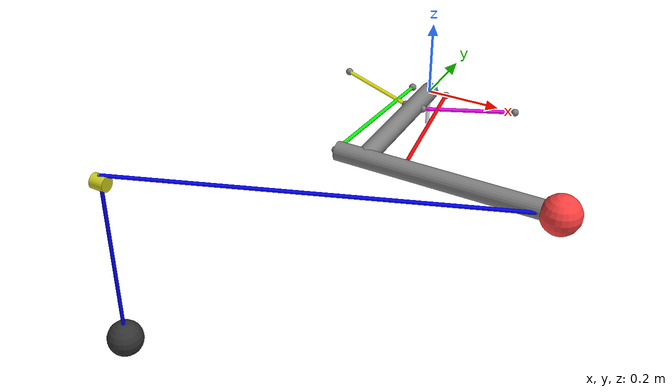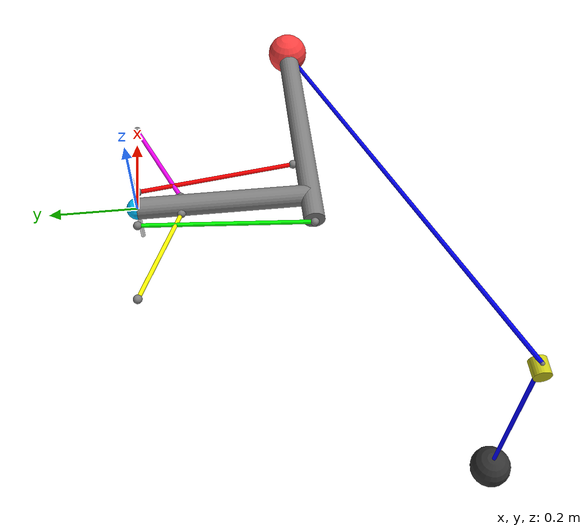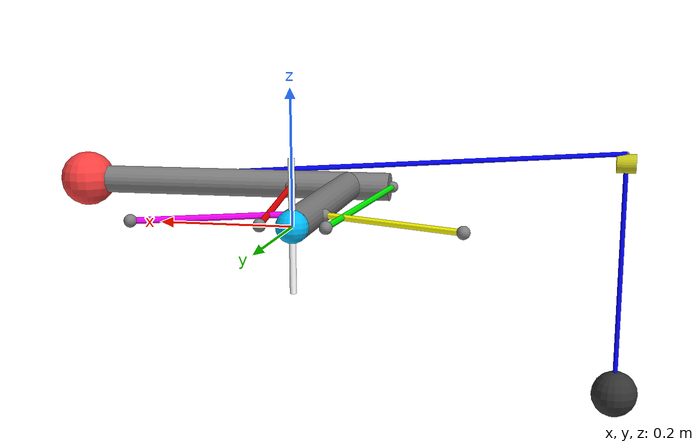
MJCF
<mujoco model="two-joint-limb">
  <option timestep="0.002"/>

  <visual>
    <map force="0.1" zfar="30" />
    <rgba haze="0.15 0.25 0.35 1" />
    <global offwidth="2560" offheight="1440" elevation="-45" azimuth="120" />
  </visual>

  <asset>
    <texture type="skybox" builtin="gradient" rgb1=".3 .5 .7" rgb2="0 0 0" width="32" height="512" />
    <texture name="grid" type="2d" builtin="checker" width="512" height="512" rgb1=".1 .2 .3"
      rgb2=".2 .3 .4" />
    <material name="grid" texture="grid" texrepeat="10 10" texuniform="true" reflectance=".2" />
  </asset>

  <default>
    <joint damping="0.1" />
    <muscle ctrllimited="true" ctrlrange="0 1" />
  </default>

  <worldbody>
    <!-- LIGHTS -->
    <light name="spotlight" mode="targetbodycom" target="hand" diffuse=".5 .5 .5"
      specular="0.3 0.3 0.3" pos="0 -6 4" cutoff="30" />
    <light name="top" pos="0 0 2" mode="trackcom" />

    <!-- FLOOR-->

    <!-- TRUNK -->
    <body name="trunk" pos="0 0 0">

      <!-- tendon attachment sites -->
      <site name="deltoid1" pos=".25 0 0" size="0.01" />
      <site name="latissimus1" pos="-0.25 0 0" size="0.01" />

      <!-- UPPER ARM -->
      <body name="upper_arm" pos="0 0 0">

        <!-- shoulder -->
        <joint name="shoulder" type="hinge" axis="0 0 1" range="-60 60" />

        <!-- tendon attachment sites -->
        <site name="deltoid2" pos="0.025 -.1 0" size="0.01" />
        <site name="latissimus2" pos="-0.025 -.1 0" size="0.01" />
        <site name="biceps1" pos="0.05 0 0" size="0.01" />
        <site name="triceps1" pos="-0.05 0 0" size="0.01" />

        <!-- humerus -->
        <geom name="humerus" type="cylinder" size="0.025" fromto="0 0 0 0 -.4 0" />

        <!-- LOWER ARM -->
        <body name="lower_arm" pos="0 -0.4 0">

          <!-- elbow -->
          <joint name="elbow" type="hinge" axis="0 0 1" range="-60 60" />

          <!-- tendon attachment sites -->
          <site name="biceps2" pos=".1 .03 0" size="0.01" />
          <site name="triceps2" pos="-.08 0 0" size="0.01" />

          <!-- radius -->
          <geom name="radius" type="cylinder" size="0.025" fromto="-.075 0 0 .5 0 0" />

          <!-- HAND -->
          <body name="hand" pos="0.5 0 0">
            <geom name="hand" type="sphere" size="0.05" pos="0 0 0" rgba="1 .25 .25 1" />
            <site name="nail2" pos="0 0 0" />
	    <site name="weight_connection_1" pos="0 0 0" />
          </body>
        </body>
      </body>
    </body>

    <!-- Pulley base -->
    <body name="pulley_base" pos="-0.5 -0.8 0">
    <geom name="pulley" type="cylinder" fromto="-0.02 0 0 0.02 0 0" size="0.02" rgba="0.8 0.8 0.1 1" />
    <site name="wrap_site" pos="0 0 0.02" size="0.005" />
    </body>

    <!-- Hanging weight -->
    <body name="hanging_weight" pos="-0.5 -0.8 -0.5">
    <joint name="weight_slide" type="slide" axis="0 0 1"/>
    <site name="hanging_weight_site" pos="0 0 0" size="0.01" />
    <geom name="weight_geom" type="sphere" size="0.05" mass="2" rgba="0.2 0.2 0.2 1"/>
    </body>

    <!-- TARGET -->
    <body name="target" mocap="true" pos="0 0 0">
      <geom name="target" size=".025" type="sphere" contype="0" conaffinity="0"
        rgba="0 .75 1 1" />
    </body>

    <!-- NAIL -->
    <body name="nail" mocap="true" pos="0 0 0">
      <geom name="nail" type="cylinder" size=".005" fromto="0 0 -.1 0 0 .1" contype="0"
        conaffinity="0" rgba="1 1 1 1" />
      <site name="nail1" pos="0 0 0" />
    </body>
  </worldbody>

  <equality>
    <connect name="nail_eq" active="false" site1="nail1" site2="nail2" />
  </equality>

  <tendon>
    <spatial name="deltoid_tendon" limited="true" range="0 1" width="0.005" rgba="1 0 1 1">
      <site site="deltoid1" />
      <site site="deltoid2" />
    </spatial>

    <spatial name="latissimus_tendon" limited="true" range="0 1" width="0.005" rgba="1 1 0 1">
      <site site="latissimus1" />
      <site site="latissimus2" />
    </spatial>

    <spatial name="biceps_tendon" limited="true" range="0 .485" width="0.005" rgba="1 0 0 1">
      <site site="biceps1" />
      <geom geom="humerus" />
      <site site="biceps2" />
    </spatial>

    <spatial name="triceps_tendon" limited="true" range="0 .5" width="0.005" rgba="0 1 0 1">
      <site site="triceps1" />
      <geom geom="radius" />
      <site site="triceps2" />
    </spatial>

    <spatial name="tendon_segment1" width="0.005" limited="true" range="0 0.5" rgba="0 0 1 1">
  <site site="weight_connection_1"/>
  <site site="wrap_site"/>
</spatial>

<spatial name="tendon_segment2" width="0.005" limited="true" range="0 0.5" rgba="0 0 1 1">
  <site site="wrap_site"/>
  <site site="hanging_weight_site"/>
</spatial>

  </tendon>

  <equality>
    <tendon name="pulley_constraint" tendon1="tendon_segment1" tendon2="tendon_segment2" polycoef="1 1" />
  </equality>

  <actuator>
    <muscle name="deltoid" tendon="deltoid_tendon" ctrlrange="0 1" force="100" timeconst=".01 .04" />
    <muscle name="latissimus" tendon="latissimus_tendon" ctrlrange="0 1" force="100"
      timeconst=".01 .04" />
    <muscle name="biceps" tendon="biceps_tendon" ctrlrange="0 1" force="100" timeconst=".01 .04" />
    <muscle name="triceps" tendon="triceps_tendon" ctrlrange="0 1" force="100" timeconst=".01 .04" />
  </actuator>

  <sensor>
    <actuatorpos name="deltoid_length" actuator="deltoid" />
    <actuatorpos name="latissimus_length" actuator="latissimus" />
    <actuatorpos name="biceps_length" actuator="biceps" />
    <actuatorpos name="triceps_length" actuator="triceps" />
    <actuatorvel name="deltoid_velocity" actuator="deltoid" />
    <actuatorvel name="latissimus_velocity" actuator="latissimus" />
    <actuatorvel name="biceps_velocity" actuator="biceps" />
    <actuatorvel name="triceps_velocity" actuator="triceps" />
    <actuatorfrc name="deltoid_force" actuator="deltoid" />
    <actuatorfrc name="latissimus_force" actuator="latissimus" />
    <actuatorfrc name="biceps_force" actuator="biceps" />
    <actuatorfrc name="triceps_force" actuator="triceps" />
  </sensor>

</mujoco>
